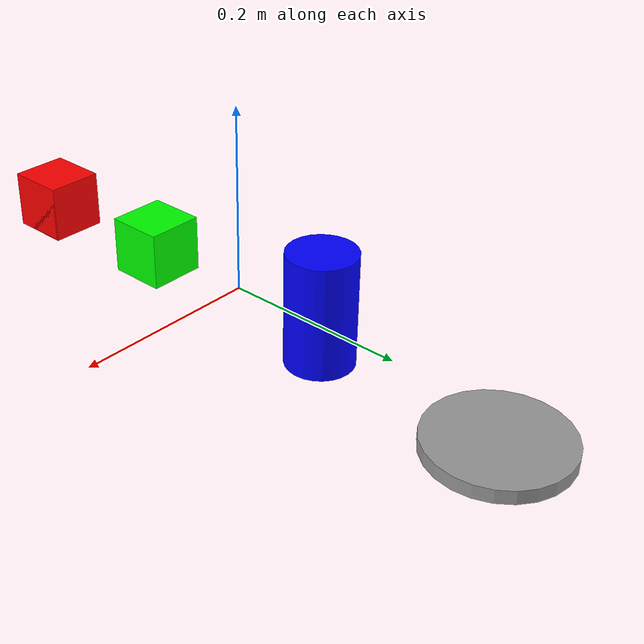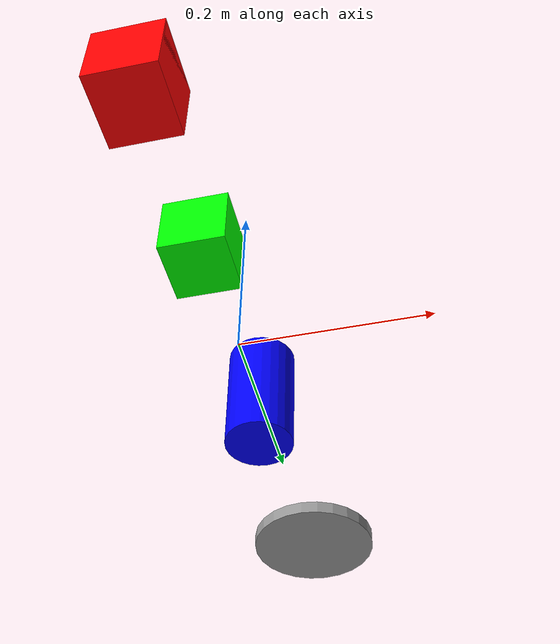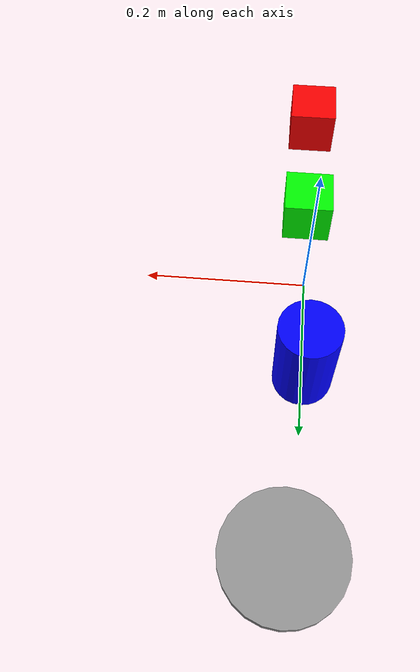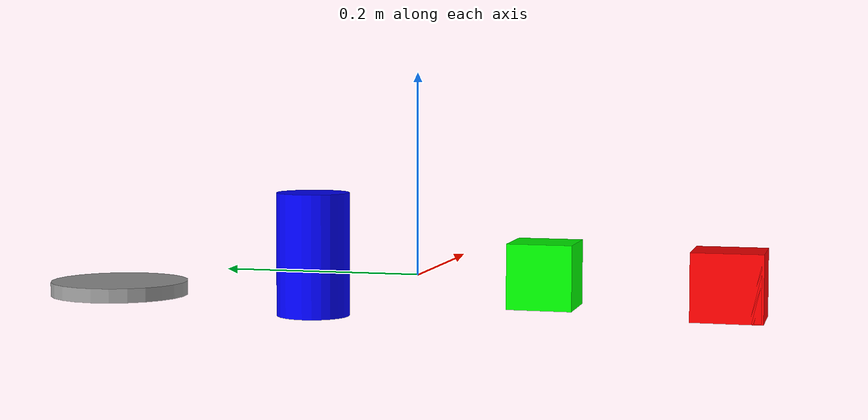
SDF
<?xml version='1.0'?>
<sdf version='1.6'>
  <model name='colouredmodel'>
    <link name='link_0'>
      <inertial>
        <mass>0.00028448</mass>
        <inertia>
          <ixx>2.1e-07</ixx>
          <ixy>0</ixy>
          <ixz>0</ixz>
          <iyy>2e-07</iyy>
          <iyz>0</iyz>
          <izz>2.1e-07</izz>
        </inertia>
        <pose frame=''>0 0 0 0 -0 0</pose>
      </inertial>
      <pose frame=''>-0.004105 -0.304661 0.000939 0 -0 0</pose>
      <gravity>1</gravity>
      <self_collide>0</self_collide>
      <kinematic>0</kinematic>
      <enable_wind>0</enable_wind>
      <visual name='ModelPreview_0::link_0::visual_1'>
        <pose frame=''>0 0 0 0 -0 0</pose>
        <geometry>
          <box>
            <size>0.063779 0.068051 0.06553</size>
          </box>
        </geometry>
        <material>
          <lighting>1</lighting>
          <script>
            <uri>file://media/materials/scripts/gazebo.material</uri>
            <name>Gazebo/Grey</name>
          </script>
          <ambient>1 0 0 0</ambient>
          <shader type='vertex'>
            <normal_map>__default__</normal_map>
          </shader>
          <diffuse>0.7 0.7 0.7 1</diffuse>
          <specular>0.01 0.01 0.01 1</specular>
          <emissive>0 0 0 1</emissive>
        </material>
        <transparency>0</transparency>
        <cast_shadows>1</cast_shadows>
      </visual>
      <visual name='visual'>
        <pose frame=''>0 0 0 0 -0 0</pose>
        <geometry>
          <box>
            <size>0.063779 0.063779 0.063779</size>
          </box>
        </geometry>
        <material>
          <lighting>1</lighting>
          <script>
            <uri>file://media/materials/scripts/gazebo.material</uri>
            <name>Gazebo/Grey</name>
          </script>
          <ambient>1 0 0 0</ambient>
          <shader type='vertex'>
            <normal_map>__default__</normal_map>
          </shader>
          <diffuse>0.7 0.7 0.7 1</diffuse>
          <specular>0.01 0.01 0.01 1</specular>
          <emissive>0 0 0 1</emissive>
        </material>
        <transparency>0</transparency>
        <cast_shadows>1</cast_shadows>
      </visual>
      <collision name='collision'>
        <laser_retro>0</laser_retro>
        <max_contacts>10</max_contacts>
        <pose frame=''>0 0 0 0 -0 0</pose>
        <geometry>
          <box>
            <size>0.063779 0.068051 0.06553</size>
          </box>
        </geometry>
        <surface>
          <friction>
            <ode>
              <mu>1</mu>
              <mu2>1</mu2>
              <fdir1>0 0 0</fdir1>
              <slip1>0</slip1>
              <slip2>0</slip2>
            </ode>
            <torsional>
              <coefficient>1</coefficient>
              <patch_radius>0</patch_radius>
              <surface_radius>0</surface_radius>
              <use_patch_radius>1</use_patch_radius>
              <ode>
                <slip>0</slip>
              </ode>
            </torsional>
          </friction>
          <bounce>
            <restitution_coefficient>0</restitution_coefficient>
            <threshold>1e+06</threshold>
          </bounce>
          <contact>
            <collide_without_contact>0</collide_without_contact>
            <collide_without_contact_bitmask>1</collide_without_contact_bitmask>
            <collide_bitmask>1</collide_bitmask>
            <ode>
              <soft_cfm>0</soft_cfm>
              <soft_erp>0.2</soft_erp>
              <kp>1e+13</kp>
              <kd>1</kd>
              <max_vel>0.01</max_vel>
              <min_depth>0</min_depth>
            </ode>
            <bullet>
              <split_impulse>1</split_impulse>
              <split_impulse_penetration_threshold>-0.01</split_impulse_penetration_threshold>
              <soft_cfm>0</soft_cfm>
              <soft_erp>0.2</soft_erp>
              <kp>1e+13</kp>
              <kd>1</kd>
            </bullet>
          </contact>
        </surface>
      </collision>
    </link>
    <link name='link_1'>
      <inertial>
        <mass>0.00091293</mass>
        <inertia>
          <ixx>1.33e-06</ixx>
          <ixy>0</ixy>
          <ixz>0</ixz>
          <iyy>1.5e-06</iyy>
          <iyz>0</iyz>
          <izz>1.49e-06</izz>
        </inertia>
        <pose frame=''>0 0 0 0 -0 0</pose>
      </inertial>
      <pose frame=''>-0.001326 -0.127623 0.005084 0 -0 0</pose>
      <gravity>1</gravity>
      <self_collide>0</self_collide>
      <kinematic>0</kinematic>
      <enable_wind>0</enable_wind>
      <visual name='visual'>
        <pose frame=''>0 0 0 0 -0 0</pose>
        <geometry>
          <box>
            <size>0.063379 0.063379 0.063379</size>
          </box>
        </geometry>
        <material>
          <lighting>1</lighting>
          <script>
            <uri>file://media/materials/scripts/gazebo.material</uri>
            <name>Gazebo/Grey</name>
          </script>
          <shader type='vertex'>
            <normal_map>__default__</normal_map>
          </shader>
          <ambient>0 1 0 1</ambient>
          <diffuse>0.7 0.7 0.7 1</diffuse>
          <specular>0.01 0.01 0.01 1</specular>
          <emissive>0 0 0 1</emissive>
        </material>
        <transparency>0</transparency>
        <cast_shadows>1</cast_shadows>
      </visual>
      <collision name='collision'>
        <laser_retro>0</laser_retro>
        <max_contacts>10</max_contacts>
        <pose frame=''>0 0 0 0 -0 0</pose>
        <geometry>
          <box>
            <size>0.104594 0.093279 0.093561</size>
          </box>
        </geometry>
        <surface>
          <friction>
            <ode>
              <mu>1</mu>
              <mu2>1</mu2>
              <fdir1>0 0 0</fdir1>
              <slip1>0</slip1>
              <slip2>0</slip2>
            </ode>
            <torsional>
              <coefficient>1</coefficient>
              <patch_radius>0</patch_radius>
              <surface_radius>0</surface_radius>
              <use_patch_radius>1</use_patch_radius>
              <ode>
                <slip>0</slip>
              </ode>
            </torsional>
          </friction>
          <bounce>
            <restitution_coefficient>0</restitution_coefficient>
            <threshold>1e+06</threshold>
          </bounce>
          <contact>
            <collide_without_contact>0</collide_without_contact>
            <collide_without_contact_bitmask>1</collide_without_contact_bitmask>
            <collide_bitmask>1</collide_bitmask>
            <ode>
              <soft_cfm>0</soft_cfm>
              <soft_erp>0.2</soft_erp>
              <kp>1e+13</kp>
              <kd>1</kd>
              <max_vel>0.01</max_vel>
              <min_depth>0</min_depth>
            </ode>
            <bullet>
              <split_impulse>1</split_impulse>
              <split_impulse_penetration_threshold>-0.01</split_impulse_penetration_threshold>
              <soft_cfm>0</soft_cfm>
              <soft_erp>0.2</soft_erp>
              <kp>1e+13</kp>
              <kd>1</kd>
            </bullet>
          </contact>
        </surface>
      </collision>
    </link>
    <link name='link_2'>
      <inertial>
        <mass>0.000672383</mass>
        <inertia>
          <ixx>1.08538e-06</ixx>
          <ixy>0</ixy>
          <ixz>0</ixz>
          <iyy>1.08538e-06</iyy>
          <iyz>0</iyz>
          <izz>4.56621e-07</izz>
        </inertia>
        <pose frame=''>0 0 0 0 -0 0</pose>
      </inertial>
      <pose frame=''>-0.004288 0.107629 0.018412 0 -0 0</pose>
      <gravity>1</gravity>
      <self_collide>0</self_collide>
      <kinematic>0</kinematic>
      <enable_wind>0</enable_wind>
      <visual name='visual'>
        <pose frame=''>0 0 0 0 -0 0</pose>
        <geometry>
          <cylinder>
            <radius>0.036854</radius>
            <length>0.123677</length>
          </cylinder>
        </geometry>
        <material>
          <lighting>1</lighting>
          <script>
            <uri>file://media/materials/scripts/gazebo.material</uri>
            <name>Gazebo/Grey</name>
          </script>
          <ambient>0 0 1 0</ambient>
          <shader type='vertex'>
            <normal_map>__default__</normal_map>
          </shader>
          <diffuse>0.7 0.7 0.7 1</diffuse>
          <specular>0.01 0.01 0.01 1</specular>
          <emissive>0 0 0 1</emissive>
        </material>
        <transparency>0</transparency>
        <cast_shadows>1</cast_shadows>
      </visual>
      <collision name='collision'>
        <laser_retro>0</laser_retro>
        <max_contacts>10</max_contacts>
        <pose frame=''>0 0 0 0 -0 0</pose>
        <geometry>
          <cylinder>
            <radius>0.036854</radius>
            <length>0.123677</length>
          </cylinder>
        </geometry>
        <surface>
          <friction>
            <ode>
              <mu>1</mu>
              <mu2>1</mu2>
              <fdir1>0 0 0</fdir1>
              <slip1>0</slip1>
              <slip2>0</slip2>
            </ode>
            <torsional>
              <coefficient>1</coefficient>
              <patch_radius>0</patch_radius>
              <surface_radius>0</surface_radius>
              <use_patch_radius>1</use_patch_radius>
              <ode>
                <slip>0</slip>
              </ode>
            </torsional>
          </friction>
          <bounce>
            <restitution_coefficient>0</restitution_coefficient>
            <threshold>1e+06</threshold>
          </bounce>
          <contact>
            <collide_without_contact>0</collide_without_contact>
            <collide_without_contact_bitmask>1</collide_without_contact_bitmask>
            <collide_bitmask>1</collide_bitmask>
            <ode>
              <soft_cfm>0</soft_cfm>
              <soft_erp>0.2</soft_erp>
              <kp>1e+13</kp>
              <kd>1</kd>
              <max_vel>0.01</max_vel>
              <min_depth>0</min_depth>
            </ode>
            <bullet>
              <split_impulse>1</split_impulse>
              <split_impulse_penetration_threshold>-0.01</split_impulse_penetration_threshold>
              <soft_cfm>0</soft_cfm>
              <soft_erp>0.2</soft_erp>
              <kp>1e+13</kp>
              <kd>1</kd>
            </bullet>
          </contact>
        </surface>
      </collision>
    </link>
    <link name='link_3'>
      <inertial>
        <mass>0.000294713</mass>
        <inertia>
          <ixx>3.79775e-07</ixx>
          <ixy>0</ixy>
          <ixz>0</ixz>
          <iyy>3.79775e-07</iyy>
          <iyz>0</iyz>
          <izz>7.49213e-07</izz>
        </inertia>
        <pose frame=''>0 0 0 0 -0 0</pose>
      </inertial>
      <pose frame=''>0.009714 0.324654 -0.024435 0 -0 0</pose>
      <visual name='visual'>
        <pose frame=''>0 0 0 0 -0 0</pose>
        <geometry>
          <cylinder>
            <radius>0.0713046</radius>
            <length>0.0145078</length>
          </cylinder>
        </geometry>
        <material>
          <lighting>1</lighting>
          <script>
            <uri>file://media/materials/scripts/gazebo.material</uri>
            <name>Gazebo/Grey</name>
          </script>
        </material>
        <transparency>0</transparency>
        <cast_shadows>1</cast_shadows>
      </visual>
      <collision name='collision'>
        <laser_retro>0</laser_retro>
        <max_contacts>10</max_contacts>
        <pose frame=''>0 0 0 0 -0 0</pose>
        <geometry>
          <cylinder>
            <radius>0.071305</radius>
            <length>0.014508</length>
          </cylinder>
        </geometry>
        <surface>
          <friction>
            <ode>
              <mu>1</mu>
              <mu2>1</mu2>
              <fdir1>0 0 0</fdir1>
              <slip1>0</slip1>
              <slip2>0</slip2>
            </ode>
            <torsional>
              <coefficient>1</coefficient>
              <patch_radius>0</patch_radius>
              <surface_radius>0</surface_radius>
              <use_patch_radius>1</use_patch_radius>
              <ode>
                <slip>0</slip>
              </ode>
            </torsional>
          </friction>
          <bounce>
            <restitution_coefficient>0</restitution_coefficient>
            <threshold>1e+06</threshold>
          </bounce>
          <contact>
            <collide_without_contact>0</collide_without_contact>
            <collide_without_contact_bitmask>1</collide_without_contact_bitmask>
            <collide_bitmask>1</collide_bitmask>
            <ode>
              <soft_cfm>0</soft_cfm>
              <soft_erp>0.2</soft_erp>
              <kp>1e+13</kp>
              <kd>1</kd>
              <max_vel>0.01</max_vel>
              <min_depth>0</min_depth>
            </ode>
            <bullet>
              <split_impulse>1</split_impulse>
              <split_impulse_penetration_threshold>-0.01</split_impulse_penetration_threshold>
              <soft_cfm>0</soft_cfm>
              <soft_erp>0.2</soft_erp>
              <kp>1e+13</kp>
              <kd>1</kd>
            </bullet>
          </contact>
        </surface>
      </collision>
    </link>
    <static>0</static>
    <allow_auto_disable>1</allow_auto_disable>
  </model>
</sdf>
